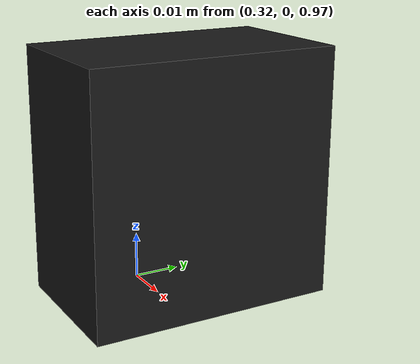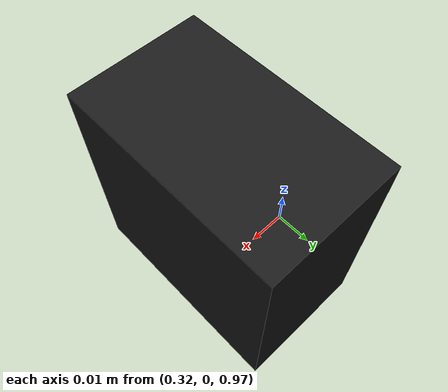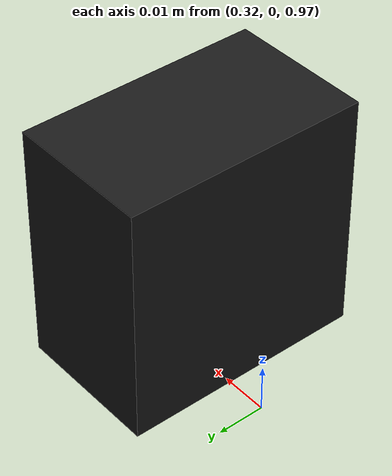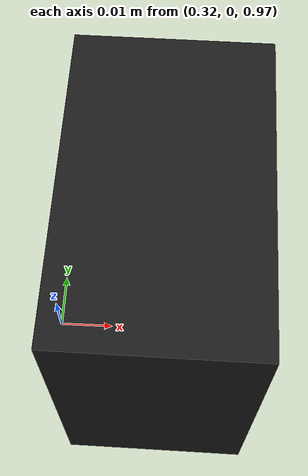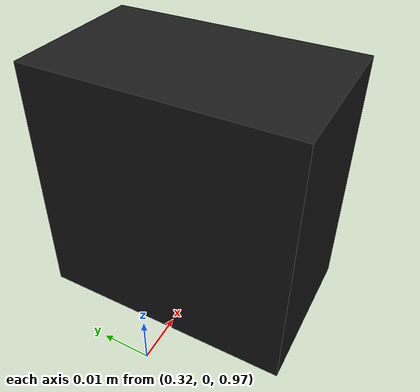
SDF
<?xml version="1.0" ?>
<sdf version="1.6">
  <world name="default">
    <include>
      <uri>model://ground_plane</uri>
    </include>
    <include>
      <uri>model://sun</uri>
    </include>

    <plugin name="gazebo_ros_state" filename="libgazebo_ros_state.so">
      <ros>
        <namespace>/gazebo</namespace>
      </ros>
      <update_rate>50.0</update_rate>
    </plugin>

    <physics type="ode">
      <max_step_size>0.001</max_step_size>
      <real_time_factor>1</real_time_factor>
      <real_time_update_rate>1000</real_time_update_rate>
    </physics>

    <!-- Camera treo lơ lửng trên trần, KHÔNG CẦN CỘT CẮM VÀO BÀN -->
    <model name="overhead_camera">
      <static>true</static>
      <pose>0.34 0 1.0 0 1.5708 0</pose>
      <link name="camera_link">
        <visual name="visual">
          <geometry>
            <box><size>0.05 0.05 0.03</size></box>
          </geometry>
          <material>
            <ambient>0.1 0.1 0.1 1</ambient>
            <diffuse>0.1 0.1 0.1 1</diffuse>
          </material>
        </visual>
        <sensor name="overhead_cam_sensor" type="camera">
          <camera>
            <horizontal_fov>1.047</horizontal_fov>
            <image>
              <width>800</width>
              <height>600</height>
            </image>
            <clip>
              <near>0.05</near>
              <far>5.0</far>
            </clip>
          </camera>
          <always_on>true</always_on>
          <update_rate>10</update_rate>
          <visualize>false</visualize> <!-- Tắt tia nón trắng cho gọn mắt -->

          <plugin name="overhead_camera_controller" filename="libgazebo_ros_camera.so">
            <camera_name>overhead_cam</camera_name>
            <frame_name>overhead_cam_optical_frame</frame_name>
          </plugin>
        </sensor>
      </link>
    </model>

  </world>
</sdf>
